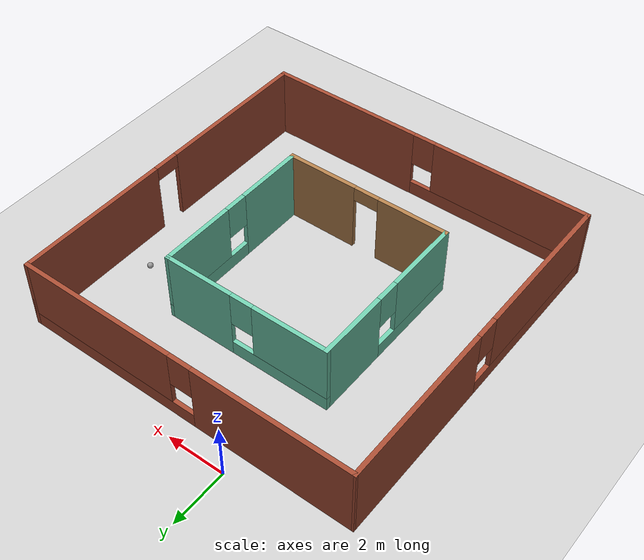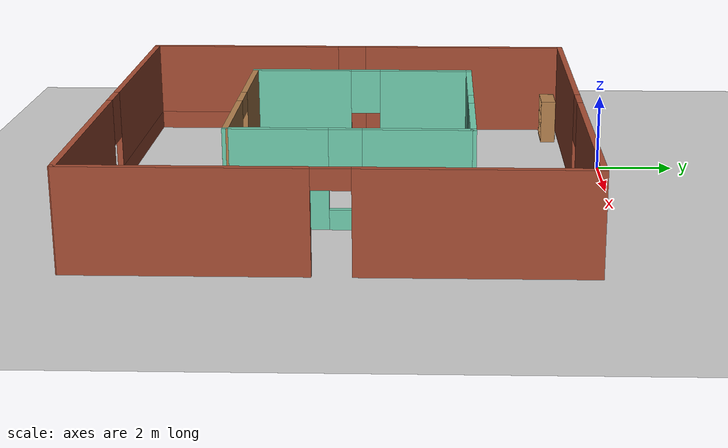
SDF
<sdf version="1.6">
 <world name="default">
  <plugin name="hello" filename="libhello.so"/>
  <model name="prasunhouse">
   <pose>2.10975 -6.7285 0 0 -0 0</pose>
   <link name="Wall_0">
    <pose>-5.92475 0 0 0 0 -1.57164</pose>
    <visual name="Wall_0_Visual_0">
     <pose>-3.11856 0 1.25 0 -0 0</pose>
     <geometry><box><size>5.78989 0.15 2.5</size></box></geometry>
     <material>
      <script><uri>file://media/materials/scripts/gazebo.material</uri><name>Gazebo/Bricks</name></script>
      <ambient>1 1 1 1</ambient>
     </material>
     <meta><layer>0</layer></meta>
    </visual>
    <collision name="Wall_0_Collision_0">
     <geometry><box><size>5.78989 0.15 2.5</size></box></geometry>
     <pose>-3.11856 0 1.25 0 -0 0</pose>
    </collision>
    <visual name="Wall_0_Visual_1">
     <pose>2.89495 0 0.25 0 -0 0</pose>
     <geometry><box><size>6.23711 0.15 0.5</size></box></geometry>
     <material>
      <script><uri>file://media/materials/scripts/gazebo.material</uri><name>Gazebo/Bricks</name></script>
      <ambient>1 1 1 1</ambient>
     </material>
     <meta><layer>0</layer></meta>
    </visual>
    <collision name="Wall_0_Collision_1">
     <geometry><box><size>6.23711 0.15 0.5</size></box></geometry>
     <pose>2.89495 0 0.25 0 -0 0</pose>
    </collision>
    <visual name="Wall_0_Visual_2">
     <pose>3.29495 0 1.5 0 -0 0</pose>
     <geometry><box><size>5.43711 0.15 2</size></box></geometry>
     <material>
      <script><uri>file://media/materials/scripts/gazebo.material</uri><name>Gazebo/Bricks</name></script>
      <ambient>1 1 1 1</ambient>
     </material>
     <meta><layer>0</layer></meta>
    </visual>
    <collision name="Wall_0_Collision_2">
     <geometry><box><size>5.43711 0.15 2</size></box></geometry>
     <pose>3.29495 0 1.5 0 -0 0</pose>
    </collision>
    <visual name="Wall_0_Visual_3">
     <pose>0.176392 0 1.9 0 -0 0</pose>
     <geometry><box><size>0.8 0.15 1.2</size></box></geometry>
     <material>
      <script><uri>file://media/materials/scripts/gazebo.material</uri><name>Gazebo/Bricks</name></script>
      <ambient>1 1 1 1</ambient>
     </material>
     <meta><layer>0</layer></meta>
    </visual>
    <collision name="Wall_0_Collision_3">
     <geometry><box><size>0.8 0.15 1.2</size></box></geometry>
     <pose>0.176392 0 1.9 0 -0 0</pose>
    </collision>
   </link>
   <link name="Wall_14">
    <pose>-0.00525 -5.9385 0 0 -0 3.14159</pose>
    <visual name="Wall_14_Visual_0">
     <pose>-3.20955 0 1.25 0 -0 0</pose>
     <geometry><box><size>5.5809 0.15 2.5</size></box></geometry>
     <material>
      <script><uri>file://media/materials/scripts/gazebo.material</uri><name>Gazebo/Bricks</name></script>
      <ambient>1 1 1 1</ambient>
     </material>
     <meta><layer>0</layer></meta>
    </visual>
    <collision name="Wall_14_Collision_0">
     <geometry><box><size>5.5809 0.15 2.5</size></box></geometry>
     <pose>-3.20955 0 1.25 0 -0 0</pose>
    </collision>
    <visual name="Wall_14_Visual_1">
     <pose>2.79045 0 0.25 0 -0 0</pose>
     <geometry><box><size>6.4191 0.15 0.5</size></box></geometry>
     <material>
      <script><uri>file://media/materials/scripts/gazebo.material</uri><name>Gazebo/Bricks</name></script>
      <ambient>1 1 1 1</ambient>
     </material>
     <meta><layer>0</layer></meta>
    </visual>
    <collision name="Wall_14_Collision_1">
     <geometry><box><size>6.4191 0.15 0.5</size></box></geometry>
     <pose>2.79045 0 0.25 0 -0 0</pose>
    </collision>
    <visual name="Wall_14_Visual_2">
     <pose>3.19045 0 1.5 0 -0 0</pose>
     <geometry><box><size>5.6191 0.15 2</size></box></geometry>
     <material>
      <script><uri>file://media/materials/scripts/gazebo.material</uri><name>Gazebo/Bricks</name></script>
      <ambient>1 1 1 1</ambient>
     </material>
     <meta><layer>0</layer></meta>
    </visual>
    <collision name="Wall_14_Collision_2">
     <geometry><box><size>5.6191 0.15 2</size></box></geometry>
     <pose>3.19045 0 1.5 0 -0 0</pose>
    </collision>
    <visual name="Wall_14_Visual_3">
     <pose>-0.0191 0 1.9 0 -0 0</pose>
     <geometry><box><size>0.8 0.15 1.2</size></box></geometry>
     <material>
      <script><uri>file://media/materials/scripts/gazebo.material</uri><name>Gazebo/Bricks</name></script>
      <ambient>1 1 1 1</ambient>
     </material>
     <meta><layer>0</layer></meta>
    </visual>
    <collision name="Wall_14_Collision_3">
     <geometry><box><size>0.8 0.15 1.2</size></box></geometry>
     <pose>-0.0191 0 1.9 0 -0 0</pose>
    </collision>
   </link>
   <link name="Wall_2">
    <pose>0.00525 5.9385 0 0 -0 0</pose>
    <visual name="Wall_2_Visual_0">
     <pose>-3.22646 0 1.25 0 -0 0</pose>
     <geometry><box><size>5.54707 0.15 2.5</size></box></geometry>
     <material>
      <script><uri>file://media/materials/scripts/gazebo.material</uri><name>Gazebo/Bricks</name></script>
      <ambient>1 1 1 1</ambient>
     </material>
     <meta><layer>0</layer></meta>
    </visual>
    <collision name="Wall_2_Collision_0">
     <geometry><box><size>5.54707 0.15 2.5</size></box></geometry>
     <pose>-3.22646 0 1.25 0 -0 0</pose>
    </collision>
    <visual name="Wall_2_Visual_1">
     <pose>2.77354 0 0.25 0 -0 0</pose>
     <geometry><box><size>6.45293 0.15 0.5</size></box></geometry>
     <material>
      <script><uri>file://media/materials/scripts/gazebo.material</uri><name>Gazebo/Bricks</name></script>
      <ambient>1 1 1 1</ambient>
     </material>
     <meta><layer>0</layer></meta>
    </visual>
    <collision name="Wall_2_Collision_1">
     <geometry><box><size>6.45293 0.15 0.5</size></box></geometry>
     <pose>2.77354 0 0.25 0 -0 0</pose>
    </collision>
    <visual name="Wall_2_Visual_2">
     <pose>3.17354 0 1.5 0 -0 0</pose>
     <geometry><box><size>5.65293 0.15 2</size></box></geometry>
     <material>
      <script><uri>file://media/materials/scripts/gazebo.material</uri><name>Gazebo/Bricks</name></script>
      <ambient>1 1 1 1</ambient>
     </material>
     <meta><layer>0</layer></meta>
    </visual>
    <collision name="Wall_2_Collision_2">
     <geometry><box><size>5.65293 0.15 2</size></box></geometry>
     <pose>3.17354 0 1.5 0 -0 0</pose>
    </collision>
    <visual name="Wall_2_Visual_3">
     <pose>-0.052928 0 1.9 0 -0 0</pose>
     <geometry><box><size>0.8 0.15 1.2</size></box></geometry>
     <material>
      <script><uri>file://media/materials/scripts/gazebo.material</uri><name>Gazebo/Bricks</name></script>
      <ambient>1 1 1 1</ambient>
     </material>
     <meta><layer>0</layer></meta>
    </visual>
    <collision name="Wall_2_Collision_3">
     <geometry><box><size>0.8 0.15 1.2</size></box></geometry>
     <pose>-0.052928 0 1.9 0 -0 0</pose>
    </collision>
   </link>
   <link name="Wall_25">
    <pose>-2.94775 0.2825 0 0 0 -1.5708</pose>
    <visual name="Wall_25_Visual_0">
     <pose>-1.74744 0 1.25 0 -0 0</pose>
     <geometry><box><size>2.50512 0.15 2.5</size></box></geometry>
     <material>
      <script><uri>file://media/materials/scripts/gazebo.material</uri><name>Gazebo/Grey</name></script>
      <ambient>0.435294 0.796078 0.67451 1</ambient>
     </material>
     <meta><layer>0</layer></meta>
    </visual>
    <collision name="Wall_25_Collision_0">
     <geometry><box><size>2.50512 0.15 2.5</size></box></geometry>
     <pose>-1.74744 0 1.25 0 -0 0</pose>
    </collision>
    <visual name="Wall_25_Visual_1">
     <pose>1.25256 0 0.25 0 -0 0</pose>
     <geometry><box><size>3.49488 0.15 0.5</size></box></geometry>
     <material>
      <script><uri>file://media/materials/scripts/gazebo.material</uri><name>Gazebo/Grey</name></script>
      <ambient>0.435294 0.796078 0.67451 1</ambient>
     </material>
     <meta><layer>0</layer></meta>
    </visual>
    <collision name="Wall_25_Collision_1">
     <geometry><box><size>3.49488 0.15 0.5</size></box></geometry>
     <pose>1.25256 0 0.25 0 -0 0</pose>
    </collision>
    <visual name="Wall_25_Visual_2">
     <pose>1.65256 0 1.5 0 -0 0</pose>
     <geometry><box><size>2.69488 0.15 2</size></box></geometry>
     <material>
      <script><uri>file://media/materials/scripts/gazebo.material</uri><name>Gazebo/Grey</name></script>
      <ambient>0.435294 0.796078 0.67451 1</ambient>
     </material>
     <meta><layer>0</layer></meta>
    </visual>
    <collision name="Wall_25_Collision_2">
     <geometry><box><size>2.69488 0.15 2</size></box></geometry>
     <pose>1.65256 0 1.5 0 -0 0</pose>
    </collision>
    <visual name="Wall_25_Visual_3">
     <pose>-0.094884 0 1.9 0 -0 0</pose>
     <geometry><box><size>0.8 0.15 1.2</size></box></geometry>
     <material>
      <script><uri>file://media/materials/scripts/gazebo.material</uri><name>Gazebo/Grey</name></script>
      <ambient>0.435294 0.796078 0.67451 1</ambient>
     </material>
     <meta><layer>0</layer></meta>
    </visual>
    <collision name="Wall_25_Collision_3">
     <geometry><box><size>0.8 0.15 1.2</size></box></geometry>
     <pose>-0.094884 0 1.9 0 -0 0</pose>
    </collision>
   </link>
   <link name="Wall_26">
    <pose>-0.02275 -2.6425 0 0 -0 0</pose>
    <visual name="Wall_26_Visual_0">
     <pose>-1.73746 0 1.25 0 -0 0</pose>
     <geometry><box><size>2.52507 0.15 2.5</size></box></geometry>
     <material>
      <script><uri>file://media/materials/scripts/gazebo.material</uri><name>Gazebo/Wood</name></script>
      <ambient>1 1 1 1</ambient>
     </material>
     <meta><layer>0</layer></meta>
    </visual>
    <collision name="Wall_26_Collision_0">
     <geometry><box><size>2.52507 0.15 2.5</size></box></geometry>
     <pose>-1.73746 0 1.25 0 -0 0</pose>
    </collision>
    <visual name="Wall_26_Visual_1">
     <pose>1.71254 0 1.25 0 -0 0</pose>
     <geometry><box><size>2.57493 0.15 2.5</size></box></geometry>
     <material>
      <script><uri>file://media/materials/scripts/gazebo.material</uri><name>Gazebo/Wood</name></script>
      <ambient>1 1 1 1</ambient>
     </material>
     <meta><layer>0</layer></meta>
    </visual>
    <collision name="Wall_26_Collision_1">
     <geometry><box><size>2.57493 0.15 2.5</size></box></geometry>
     <pose>1.71254 0 1.25 0 -0 0</pose>
    </collision>
    <visual name="Wall_26_Visual_2">
     <pose>-0.024928 0 2.25 0 -0 0</pose>
     <geometry><box><size>0.9 0.15 0.5</size></box></geometry>
     <material>
      <script><uri>file://media/materials/scripts/gazebo.material</uri><name>Gazebo/Wood</name></script>
      <ambient>1 1 1 1</ambient>
     </material>
     <meta><layer>0</layer></meta>
    </visual>
    <collision name="Wall_26_Collision_2">
     <geometry><box><size>0.9 0.15 0.5</size></box></geometry>
     <pose>-0.024928 0 2.25 0 -0 0</pose>
    </collision>
   </link>
   <link name="Wall_27">
    <pose>2.90175 0.2825 0 0 -0 1.57097</pose>
    <visual name="Wall_27_Visual_0">
     <pose>-1.74486 0 1.25 0 -0 0</pose>
     <geometry><box><size>2.51028 0.15 2.5</size></box></geometry>
     <material>
      <script><uri>file://media/materials/scripts/gazebo.material</uri><name>Gazebo/Grey</name></script>
      <ambient>0.435294 0.796078 0.67451 1</ambient>
     </material>
     <meta><layer>0</layer></meta>
    </visual>
    <collision name="Wall_27_Collision_0">
     <geometry><box><size>2.51028 0.15 2.5</size></box></geometry>
     <pose>-1.74486 0 1.25 0 -0 0</pose>
    </collision>
    <visual name="Wall_27_Visual_1">
     <pose>1.25514 0 0.25 0 -0 0</pose>
     <geometry><box><size>3.48972 0.15 0.5</size></box></geometry>
     <material>
      <script><uri>file://media/materials/scripts/gazebo.material</uri><name>Gazebo/Grey</name></script>
      <ambient>0.435294 0.796078 0.67451 1</ambient>
     </material>
     <meta><layer>0</layer></meta>
    </visual>
    <collision name="Wall_27_Collision_1">
     <geometry><box><size>3.48972 0.15 0.5</size></box></geometry>
     <pose>1.25514 0 0.25 0 -0 0</pose>
    </collision>
    <visual name="Wall_27_Visual_2">
     <pose>1.65514 0 1.5 0 -0 0</pose>
     <geometry><box><size>2.68972 0.15 2</size></box></geometry>
     <material>
      <script><uri>file://media/materials/scripts/gazebo.material</uri><name>Gazebo/Grey</name></script>
      <ambient>0.435294 0.796078 0.67451 1</ambient>
     </material>
     <meta><layer>0</layer></meta>
    </visual>
    <collision name="Wall_27_Collision_2">
     <geometry><box><size>2.68972 0.15 2</size></box></geometry>
     <pose>1.65514 0 1.5 0 -0 0</pose>
    </collision>
    <visual name="Wall_27_Visual_3">
     <pose>-0.089721 0 1.9 0 -0 0</pose>
     <geometry><box><size>0.8 0.15 1.2</size></box></geometry>
     <material>
      <script><uri>file://media/materials/scripts/gazebo.material</uri><name>Gazebo/Grey</name></script>
      <ambient>0.435294 0.796078 0.67451 1</ambient>
     </material>
     <meta><layer>0</layer></meta>
    </visual>
    <collision name="Wall_27_Collision_3">
     <geometry><box><size>0.8 0.15 1.2</size></box></geometry>
     <pose>-0.089721 0 1.9 0 -0 0</pose>
    </collision>
   </link>
   <link name="Wall_28">
    <pose>-0.02325 3.2075 0 0 -0 3.14159</pose>
    <visual name="Wall_28_Visual_0">
     <pose>-1.74906 0 1.25 0 -0 0</pose>
     <geometry><box><size>2.50087 0.15 2.5</size></box></geometry>
     <material>
      <script><uri>file://media/materials/scripts/gazebo.material</uri><name>Gazebo/Grey</name></script>
      <ambient>0.435294 0.796078 0.67451 1</ambient>
     </material>
     <meta><layer>0</layer></meta>
    </visual>
    <collision name="Wall_28_Collision_0">
     <geometry><box><size>2.50087 0.15 2.5</size></box></geometry>
     <pose>-1.74906 0 1.25 0 -0 0</pose>
    </collision>
    <visual name="Wall_28_Visual_1">
     <pose>1.25044 0 0.25 0 -0 0</pose>
     <geometry><box><size>3.49813 0.15 0.5</size></box></geometry>
     <material>
      <script><uri>file://media/materials/scripts/gazebo.material</uri><name>Gazebo/Grey</name></script>
      <ambient>0.435294 0.796078 0.67451 1</ambient>
     </material>
     <meta><layer>0</layer></meta>
    </visual>
    <collision name="Wall_28_Collision_1">
     <geometry><box><size>3.49813 0.15 0.5</size></box></geometry>
     <pose>1.25044 0 0.25 0 -0 0</pose>
    </collision>
    <visual name="Wall_28_Visual_2">
     <pose>1.65044 0 1.5 0 -0 0</pose>
     <geometry><box><size>2.69813 0.15 2</size></box></geometry>
     <material>
      <script><uri>file://media/materials/scripts/gazebo.material</uri><name>Gazebo/Grey</name></script>
      <ambient>0.435294 0.796078 0.67451 1</ambient>
     </material>
     <meta><layer>0</layer></meta>
    </visual>
    <collision name="Wall_28_Collision_2">
     <geometry><box><size>2.69813 0.15 2</size></box></geometry>
     <pose>1.65044 0 1.5 0 -0 0</pose>
    </collision>
    <visual name="Wall_28_Visual_3">
     <pose>-0.098628 0 1.9 0 -0 0</pose>
     <geometry><box><size>0.8 0.15 1.2</size></box></geometry>
     <material>
      <script><uri>file://media/materials/scripts/gazebo.material</uri><name>Gazebo/Grey</name></script>
      <ambient>0.435294 0.796078 0.67451 1</ambient>
     </material>
     <meta><layer>0</layer></meta>
    </visual>
    <collision name="Wall_28_Collision_3">
     <geometry><box><size>0.8 0.15 1.2</size></box></geometry>
     <pose>-0.098628 0 1.9 0 -0 0</pose>
    </collision>
   </link>
   <link name="Wall_6">
    <pose>5.93025 0.0135 0 0 0 -1.5708</pose>
    <visual name="Wall_6_Visual_0">
     <pose>-3.25312 0 1.25 0 -0 0</pose>
     <geometry><box><size>5.49376 0.15 2.5</size></box></geometry>
     <material>
      <script><uri>file://media/materials/scripts/gazebo.material</uri><name>Gazebo/Bricks</name></script>
      <ambient>1 1 1 1</ambient>
     </material>
     <meta><layer>0</layer></meta>
    </visual>
    <collision name="Wall_6_Collision_0">
     <geometry><box><size>5.49376 0.15 2.5</size></box></geometry>
     <pose>-3.25312 0 1.25 0 -0 0</pose>
    </collision>
    <visual name="Wall_6_Visual_1">
     <pose>3.19688 0 1.25 0 -0 0</pose>
     <geometry><box><size>5.60625 0.15 2.5</size></box></geometry>
     <material>
      <script><uri>file://media/materials/scripts/gazebo.material</uri><name>Gazebo/Bricks</name></script>
      <ambient>1 1 1 1</ambient>
     </material>
     <meta><layer>0</layer></meta>
    </visual>
    <collision name="Wall_6_Collision_1">
     <geometry><box><size>5.60625 0.15 2.5</size></box></geometry>
     <pose>3.19688 0 1.25 0 -0 0</pose>
    </collision>
    <visual name="Wall_6_Visual_2">
     <pose>-0.056245 0 2.25 0 -0 0</pose>
     <geometry><box><size>0.9 0.15 0.5</size></box></geometry>
     <material>
      <script><uri>file://media/materials/scripts/gazebo.material</uri><name>Gazebo/Bricks</name></script>
      <ambient>1 1 1 1</ambient>
     </material>
     <meta><layer>0</layer></meta>
    </visual>
    <collision name="Wall_6_Collision_2">
     <geometry><box><size>0.9 0.15 0.5</size></box></geometry>
     <pose>-0.056245 0 2.25 0 -0 0</pose>
    </collision>
   </link>
   <static>1</static>
  </model>
  <light name="sun" type="directional">
   <pose>0 0 10 0 -0 0</pose>
   <diffuse>0.8 0.8 0.8 1</diffuse>
   <specular>0.2 0.2 0.2 1</specular>
   <attenuation>
    <range>1000</range>
    <constant>0.9</constant>
    <linear>0.01</linear>
    <quadratic>0.001</quadratic>
   </attenuation>
   <direction>-0.5 0.1 -0.9</direction>
  </light>
  <model name="ground_plane">
   <static>1</static>
   <link name="link">
    <collision name="collision">
     <geometry><plane><normal>0 0 1</normal><size>100 100</size></plane></geometry>
     <surface>
      <contact><collide_bitmask>65535</collide_bitmask></contact>
      <friction><ode><mu>100</mu><mu2>50</mu2></ode></friction>
     </surface>
    </collision>
    <visual name="visual">
     <cast_shadows>0</cast_shadows>
     <geometry><plane><normal>0 0 1</normal><size>100 100</size></plane></geometry>
     <material>
      <script><uri>file://media/materials/scripts/gazebo.material</uri><name>Gazebo/Grey</name></script>
     </material>
    </visual>
   </link>
  </model>
  <gravity>0 0 -9.8</gravity>
  <magnetic_field>6e-06 2.3e-05 -4.2e-05</magnetic_field>
  <atmosphere type="adiabatic"/>
  <physics name="default_physics" default="0" type="ode">
   <max_step_size>0.001</max_step_size>
   <real_time_factor>1</real_time_factor>
   <real_time_update_rate>1000</real_time_update_rate>
  </physics>
  <scene><ambient>0.4 0.4 0.4 1</ambient><background>0.7 0.7 0.7 1</background><shadows>1</shadows></scene>
  <spherical_coordinates>
   <surface_model>EARTH_WGS84</surface_model>
   <latitude_deg>0</latitude_deg>
   <longitude_deg>0</longitude_deg>
   <elevation>0</elevation>
   <heading_deg>0</heading_deg>
  </spherical_coordinates>
  <model name="my_ball">
   <link name="link_0">
    <pose>2e-06 0.000347 -0 0 -0 0</pose>
    <inertial>
     <mass>1</mass>
     <inertia><ixx>0.1</ixx><ixy>0</ixy><ixz>0</ixz><iyy>0.1</iyy><iyz>0</iyz><izz>0.1</izz></inertia>
    </inertial>
    <visual name="visual">
     <geometry><sphere><radius>0.1</radius></sphere></geometry>
     <material>
      <lighting>1</lighting>
      <script><uri>file://media/materials/scripts/gazebo.material</uri><name>Gazebo/Grey</name></script>
      <shader type="pixel"><normal_map>__default__</normal_map></shader>
      <ambient>1 1 1 1</ambient>
      <diffuse>1 1 1 1</diffuse>
      <specular>1 1 1 1</specular>
      <emissive>1 1 1 1</emissive>
     </material>
    </visual>
    <collision name="collision">
     <geometry><sphere><radius>0.1</radius></sphere></geometry>
     <surface>
      <friction>
       <ode><mu>1</mu><mu2>1</mu2><fdir1>0 0 0</fdir1><slip1>0</slip1><slip2>0</slip2></ode>
       <torsional>
        <coefficient>1</coefficient>
        <patch_radius>0</patch_radius>
        <surface_radius>0</surface_radius>
        <use_patch_radius>1</use_patch_radius>
        <ode><slip>0</slip></ode>
       </torsional>
      </friction>
      <bounce><restitution_coefficient>0</restitution_coefficient><threshold>1e+06</threshold></bounce>
      <contact>
       <collide_without_contact>0</collide_without_contact>
       <collide_without_contact_bitmask>1</collide_without_contact_bitmask>
       <collide_bitmask>1</collide_bitmask>
       <ode>
        <soft_cfm>0</soft_cfm>
        <soft_erp>0.2</soft_erp>
        <kp>1e+13</kp>
        <kd>1</kd>
        <max_vel>0.01</max_vel>
        <min_depth>0</min_depth>
       </ode>
       <bullet>
        <split_impulse>1</split_impulse>
        <split_impulse_penetration_threshold>-0.01</split_impulse_penetration_threshold>
        <soft_cfm>0</soft_cfm>
        <soft_erp>0.2</soft_erp>
        <kp>1e+13</kp>
        <kd>1</kd>
       </bullet>
      </contact>
     </surface>
    </collision>
   </link>
   <static>0</static>
   <pose>7.0156 -4.53337 0.1 0 -0 0</pose>
  </model>
  <model name="bookshelf">
   <static>1</static>
   <link name="link">
    <inertial><mass>1</mass></inertial>
    <collision name="back">
     <pose>0 0.005 0.6 0 -0 0</pose>
     <geometry><box><size>0.9 0.01 1.2</size></box></geometry>
    </collision>
    <visual name="visual1">
     <pose>0 0.005 0.6 0 -0 0</pose>
     <geometry><box><size>0.9 0.01 1.2</size></box></geometry>
     <material>
      <script><uri>file://media/materials/scripts/gazebo.material</uri><name>Gazebo/Wood</name></script>
     </material>
    </visual>
    <collision name="left_side">
     <pose>0.45 -0.195 0.6 0 -0 0</pose>
     <geometry><box><size>0.02 0.4 1.2</size></box></geometry>
    </collision>
    <visual name="visual2">
     <pose>0.45 -0.195 0.6 0 -0 0</pose>
     <geometry><box><size>0.02 0.4 1.2</size></box></geometry>
     <material>
      <script><uri>file://media/materials/scripts/gazebo.material</uri><name>Gazebo/Wood</name></script>
     </material>
    </visual>
    <collision name="right_side">
     <pose>-0.45 -0.195 0.6 0 -0 0</pose>
     <geometry><box><size>0.02 0.4 1.2</size></box></geometry>
    </collision>
    <visual name="visual3">
     <pose>-0.45 -0.195 0.6 0 -0 0</pose>
     <geometry><box><size>0.02 0.4 1.2</size></box></geometry>
     <material>
      <script><uri>file://media/materials/scripts/gazebo.material</uri><name>Gazebo/Wood</name></script>
     </material>
    </visual>
    <collision name="bottom">
     <pose>0 -0.195 0.03 0 -0 0</pose>
     <geometry><box><size>0.88 0.4 0.06</size></box></geometry>
    </collision>
    <visual name="visual4">
     <pose>0 -0.195 0.03 0 -0 0</pose>
     <geometry><box><size>0.88 0.4 0.06</size></box></geometry>
     <material>
      <script><uri>file://media/materials/scripts/gazebo.material</uri><name>Gazebo/Wood</name></script>
     </material>
    </visual>
    <collision name="top">
     <pose>0 -0.195 1.19 0 -0 0</pose>
     <geometry><box><size>0.88 0.4 0.02</size></box></geometry>
    </collision>
    <visual name="visual5">
     <pose>0 -0.195 1.19 0 -0 0</pose>
     <geometry><box><size>0.88 0.4 0.02</size></box></geometry>
     <material>
      <script><uri>file://media/materials/scripts/gazebo.material</uri><name>Gazebo/Wood</name></script>
     </material>
    </visual>
    <collision name="low_shelf">
     <pose>0 -0.195 0.43 0 -0 0</pose>
     <geometry><box><size>0.88 0.4 0.02</size></box></geometry>
    </collision>
    <visual name="visual6">
     <pose>0 -0.195 0.43 0 -0 0</pose>
     <geometry><box><size>0.88 0.4 0.02</size></box></geometry>
     <material>
      <script><uri>file://media/materials/scripts/gazebo.material</uri><name>Gazebo/Wood</name></script>
     </material>
    </visual>
    <collision name="high_shelf">
     <pose>0 -0.195 0.8 0 -0 0</pose>
     <geometry><box><size>0.88 0.4 0.02</size></box></geometry>
    </collision>
    <visual name="visual7">
     <pose>0 -0.195 0.8 0 -0 0</pose>
     <geometry><box><size>0.88 0.4 0.02</size></box></geometry>
     <material>
      <script><uri>file://media/materials/scripts/gazebo.material</uri><name>Gazebo/Wood</name></script>
     </material>
    </visual>
   </link>
   <pose>-2.9029 -0.981038 0 0 -0 0</pose>
  </model>
 </world>
</sdf>
